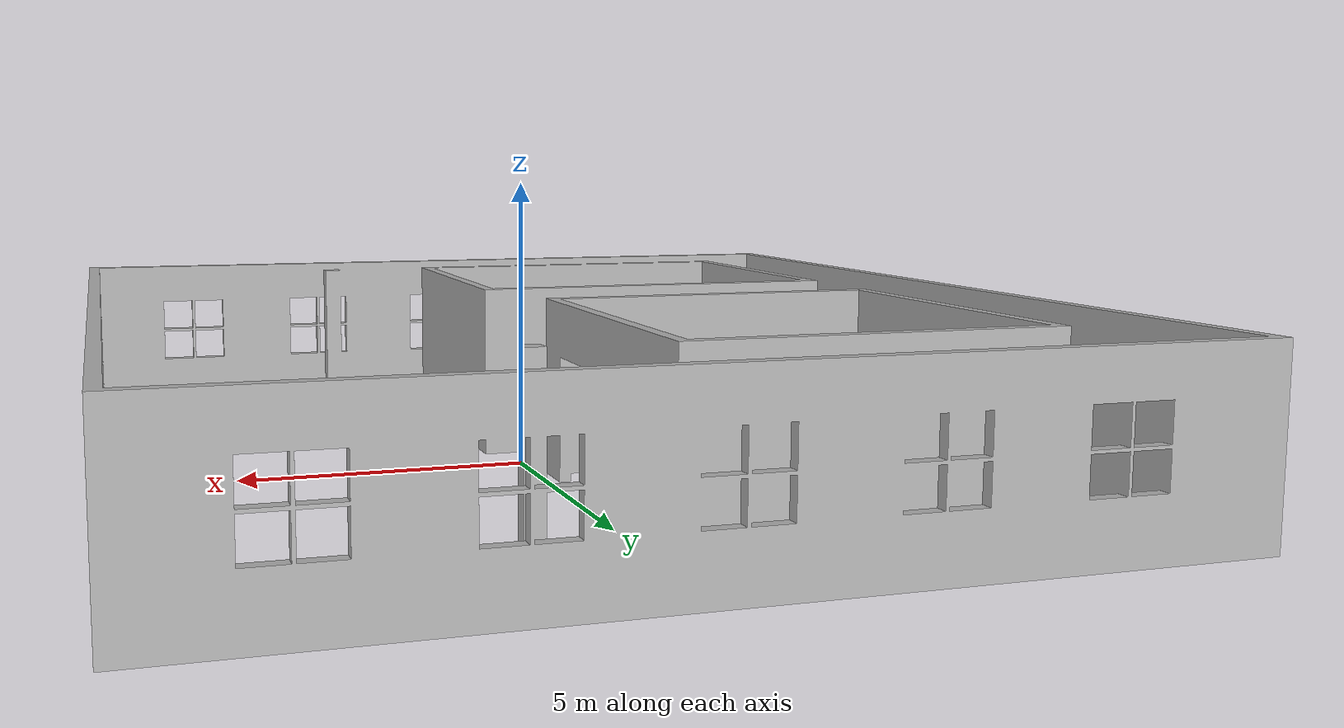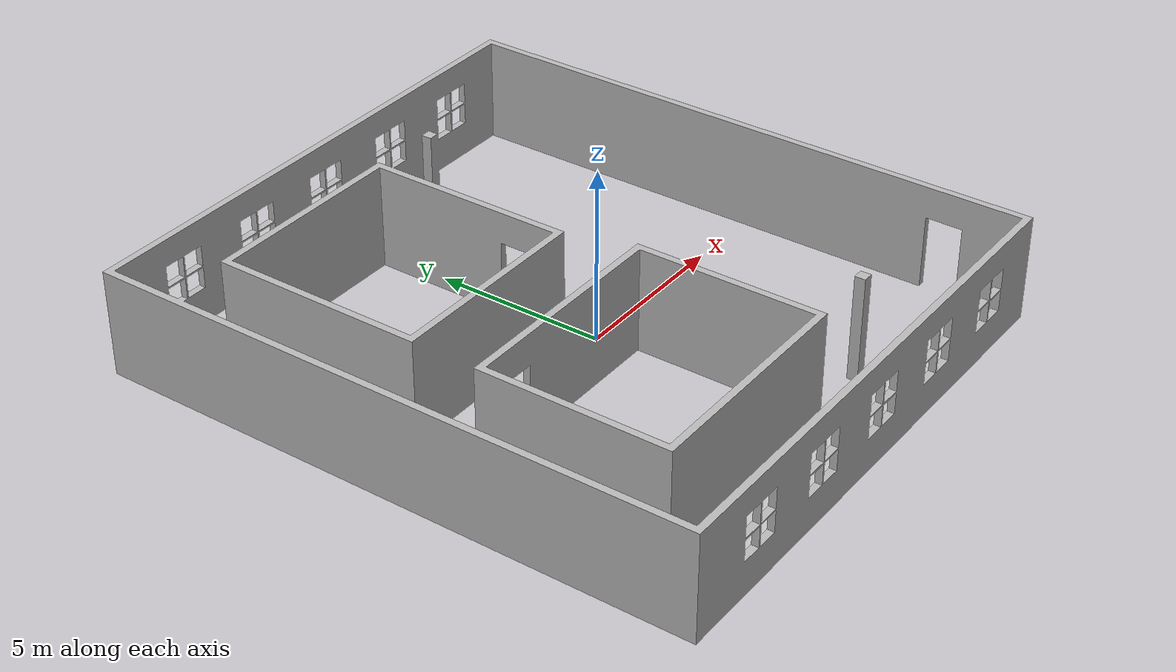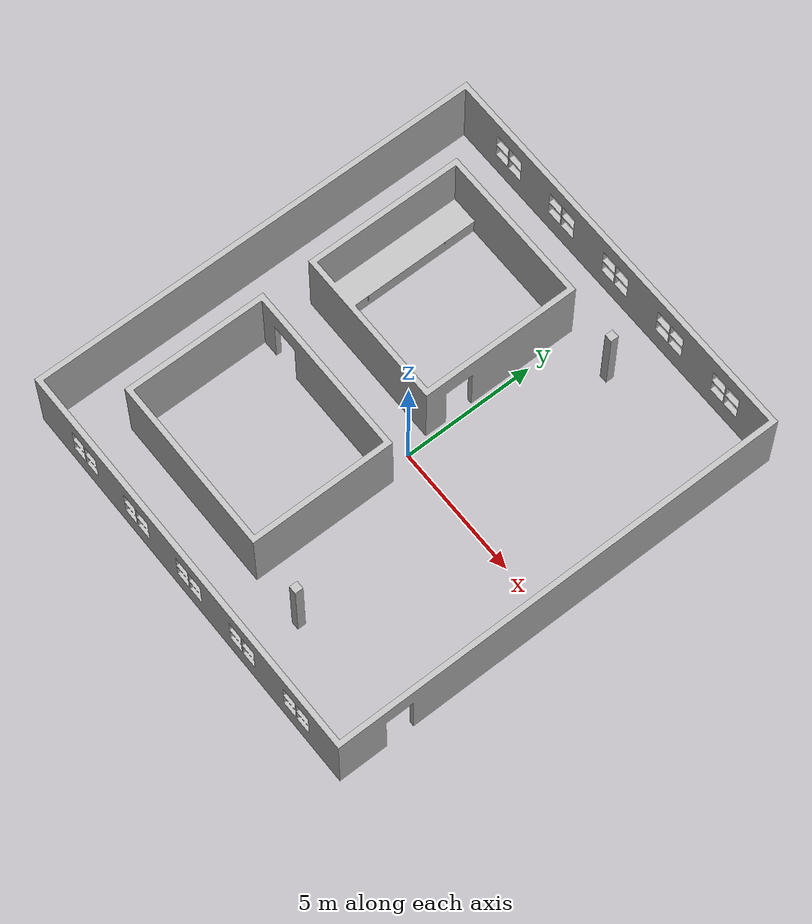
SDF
<?xml version="1.0" ?>
<sdf version="1.4">
  <model name="robotnik_space">
    <link name="link">
      <inertial>
        <mass>15</mass>
        <inertia>
          <ixx>0.0</ixx>
          <ixy>0.0</ixy>
          <ixz>0.0</ixz>
          <iyy>0.0</iyy>
          <iyz>0.0</iyz>
          <izz>0.1</izz>
        </inertia>
      </inertial>
      <collision name="collision">
        <pose>-8.12 8.8 0 1.57 0 0</pose>
        <geometry>
          <mesh>
            <uri>model://robotnik_space/meshes/robotnik_indoor.dae</uri>
          </mesh>
        </geometry>
      </collision>
      <visual name="visual">
        <pose>-8.12 8.8 0 1.57 0 0</pose>
        <geometry>
          <mesh>
            <uri>model://robotnik_space/meshes/robotnik_indoor.dae</uri>
          </mesh>
        </geometry>
      </visual>
    </link>
    <static>1</static>
  </model>
</sdf>
